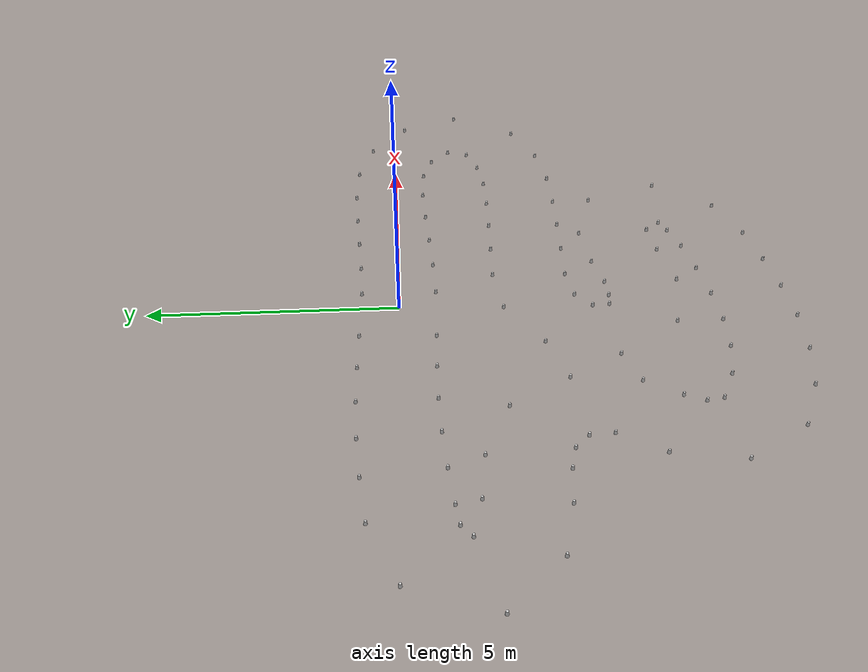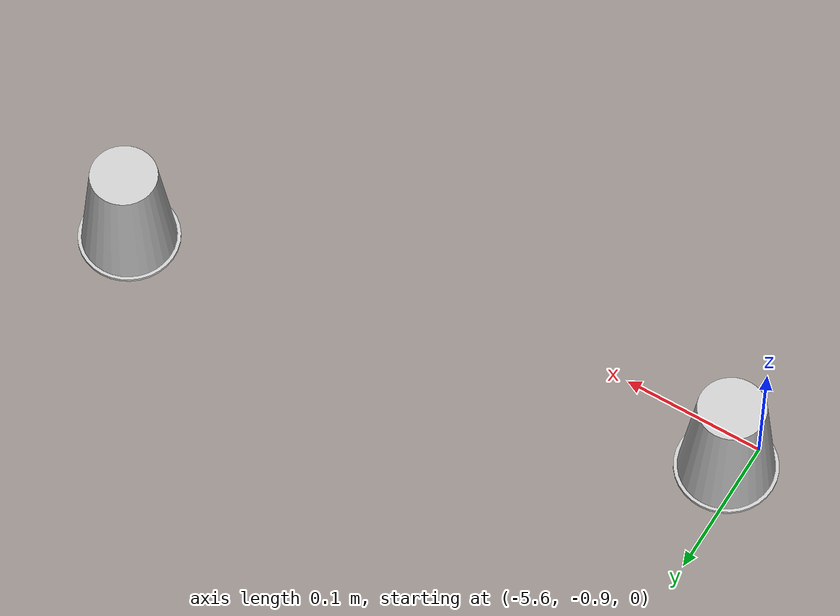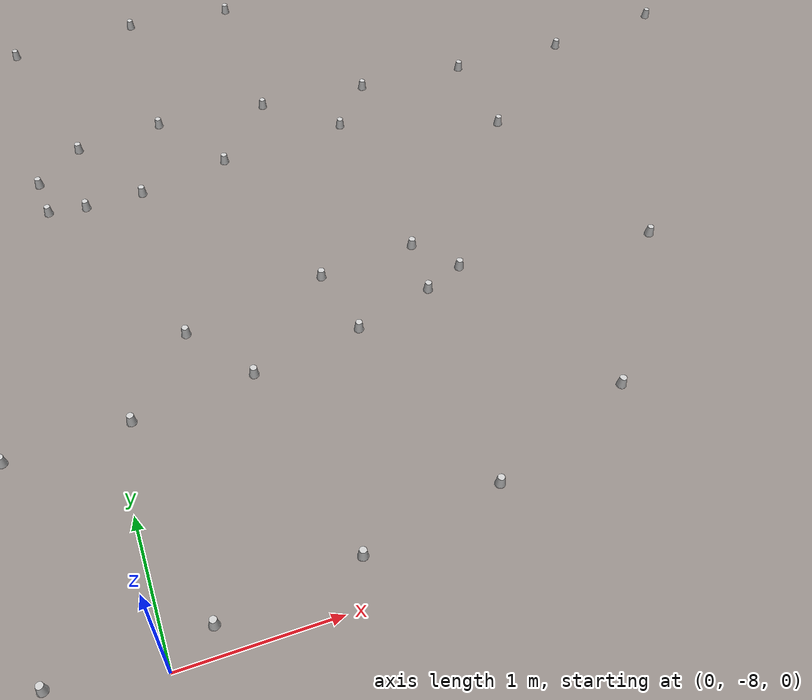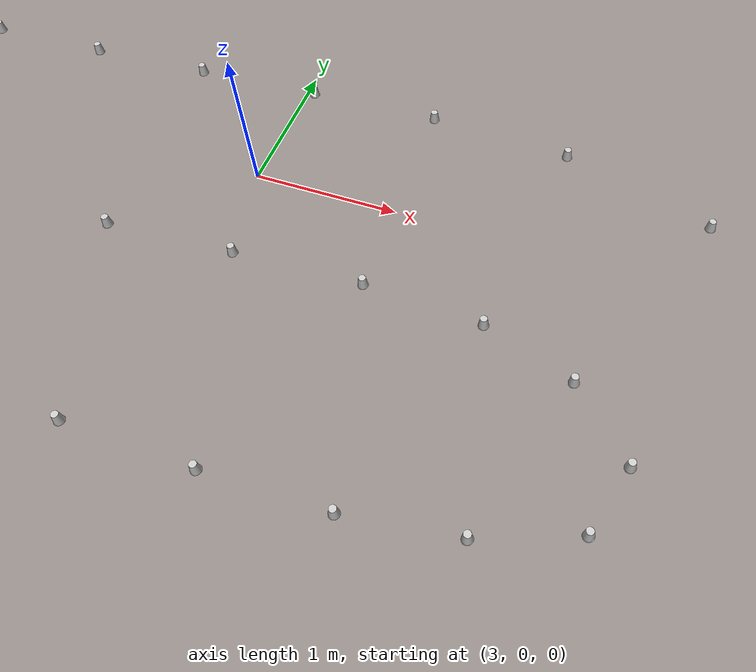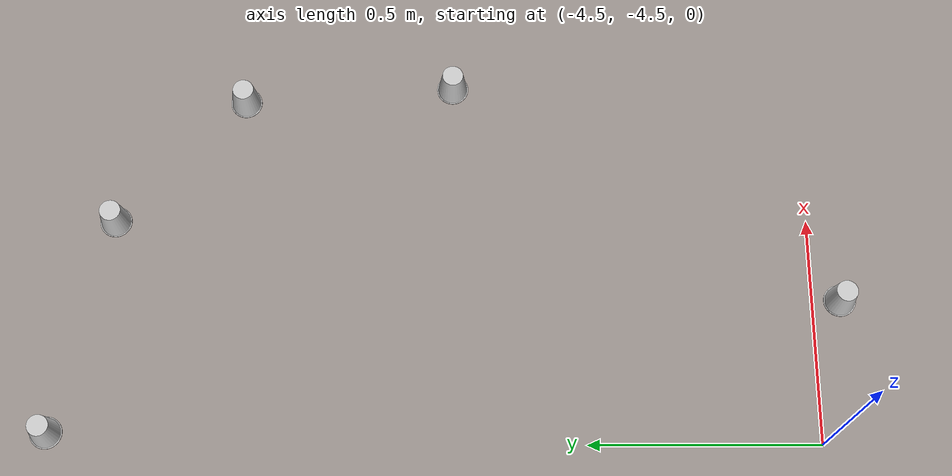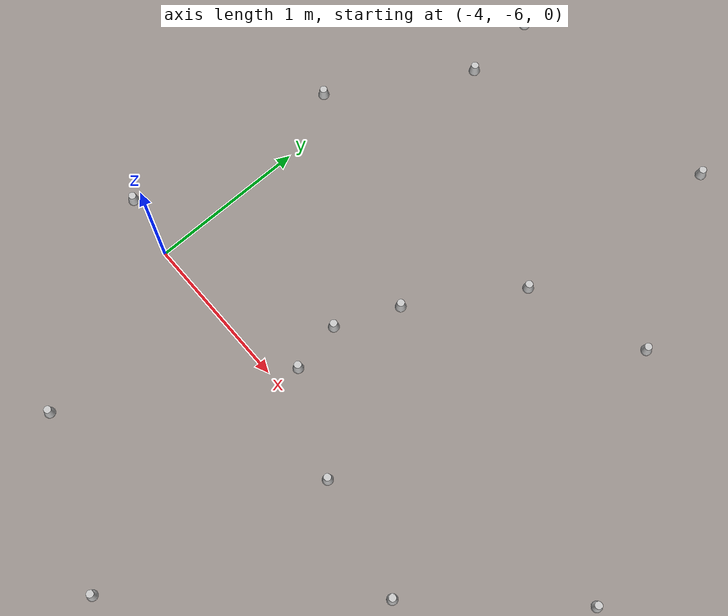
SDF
<?xml version='1.0' encoding='UTF-8'?>
<sdf version="1.4">
  <model name="some track">
    <include>
      <uri>model://cone_yellow</uri>
      <pose>0.44532843419543156 -0.7517655040045353 0 0 0 0</pose>
      <name>cone_right_0</name>
    </include>
    <include>
      <uri>model://cone_yellow</uri>
      <pose>1.3561582244588484 -0.7297098783180443 0 0 0 0</pose>
      <name>cone_right_1</name>
    </include>
    <include>
      <uri>model://cone_yellow</uri>
      <pose>2.246579475809653 -0.6872920485176046 0 0 0 0</pose>
      <name>cone_right_2</name>
    </include>
    <include>
      <uri>model://cone_yellow</uri>
      <pose>3.128735906263988 -0.6414211334563982 0 0 0 0</pose>
      <name>cone_right_3</name>
    </include>
    <include>
      <uri>model://cone_yellow</uri>
      <pose>4.0123195182985105 -0.609832305464894 0 0 0 0</pose>
      <name>cone_right_4</name>
    </include>
    <include>
      <uri>model://cone_yellow</uri>
      <pose>4.813619329737304 -0.6567870702049523 0 0 0 0</pose>
      <name>cone_right_5</name>
    </include>
    <include>
      <uri>model://cone_yellow</uri>
      <pose>5.426015287033728 -0.8655939495500213 0 0 0 0</pose>
      <name>cone_right_6</name>
    </include>
    <include>
      <uri>model://cone_yellow</uri>
      <pose>5.842792072963772 -1.2758926808901134 0 0 0 0</pose>
      <name>cone_right_7</name>
    </include>
    <include>
      <uri>model://cone_yellow</uri>
      <pose>5.7136609890403225 -1.7170841274891648 0 0 0 0</pose>
      <name>cone_right_8</name>
    </include>
    <include>
      <uri>model://cone_yellow</uri>
      <pose>5.11883780640291 -1.9319245447790268 0 0 0 0</pose>
      <name>cone_right_9</name>
    </include>
    <include>
      <uri>model://cone_yellow</uri>
      <pose>4.409484526332486 -2.0263091839179475 0 0 0 0</pose>
      <name>cone_right_10</name>
    </include>
    <include>
      <uri>model://cone_yellow</uri>
      <pose>3.599106443089668 -2.0356730992995984 0 0 0 0</pose>
      <name>cone_right_11</name>
    </include>
    <include>
      <uri>model://cone_yellow</uri>
      <pose>2.7286823929773716 -2.014726249385479 0 0 0 0</pose>
      <name>cone_right_12</name>
    </include>
    <include>
      <uri>model://cone_yellow</uri>
      <pose>1.8542712468050244 -1.9849206260404086 0 0 0 0</pose>
      <name>cone_right_13</name>
    </include>
    <include>
      <uri>model://cone_yellow</uri>
      <pose>0.956648776510222 -1.94876491273577 0 0 0 0</pose>
      <name>cone_right_14</name>
    </include>
    <include>
      <uri>model://cone_yellow</uri>
      <pose>-0.10587205751829051 -2.083718932034849 0 0 0 0</pose>
      <name>cone_right_15</name>
    </include>
    <include>
      <uri>model://cone_yellow</uri>
      <pose>-1.1886513237863356 -2.7917168840555977 0 0 0 0</pose>
      <name>cone_right_16</name>
    </include>
    <include>
      <uri>model://cone_yellow</uri>
      <pose>-1.6173561454818755 -4.184021942090414 0 0 0 0</pose>
      <name>cone_right_17</name>
    </include>
    <include>
      <uri>model://cone_yellow</uri>
      <pose>-0.7091848577082369 -5.459993767990639 0 0 0 0</pose>
      <name>cone_right_18</name>
    </include>
    <include>
      <uri>model://cone_yellow</uri>
      <pose>0.6110234193466256 -5.727231549258955 0 0 0 0</pose>
      <name>cone_right_19</name>
    </include>
    <include>
      <uri>model://cone_yellow</uri>
      <pose>1.660682322036017 -5.525302004261681 0 0 0 0</pose>
      <name>cone_right_20</name>
    </include>
    <include>
      <uri>model://cone_yellow</uri>
      <pose>2.3952461850678444 -5.44641001713668 0 0 0 0</pose>
      <name>cone_right_21</name>
    </include>
    <include>
      <uri>model://cone_yellow</uri>
      <pose>2.6459992599699294 -5.760129282699452 0 0 0 0</pose>
      <name>cone_right_22</name>
    </include>
    <include>
      <uri>model://cone_yellow</uri>
      <pose>2.3476110720665444 -5.890484035315588 0 0 0 0</pose>
      <name>cone_right_23</name>
    </include>
    <include>
      <uri>model://cone_yellow</uri>
      <pose>1.7566256077249063 -6.072243750283921 0 0 0 0</pose>
      <name>cone_right_24</name>
    </include>
    <include>
      <uri>model://cone_yellow</uri>
      <pose>0.9627502990653223 -6.213773697027143 0 0 0 0</pose>
      <name>cone_right_25</name>
    </include>
    <include>
      <uri>model://cone_yellow</uri>
      <pose>0.11498758312116553 -6.324705258762572 0 0 0 0</pose>
      <name>cone_right_26</name>
    </include>
    <include>
      <uri>model://cone_yellow</uri>
      <pose>-0.7084705242905679 -6.367728822083069 0 0 0 0</pose>
      <name>cone_right_27</name>
    </include>
    <include>
      <uri>model://cone_yellow</uri>
      <pose>-1.5039244125294318 -6.317064377628609 0 0 0 0</pose>
      <name>cone_right_28</name>
    </include>
    <include>
      <uri>model://cone_yellow</uri>
      <pose>-2.2724269148706298 -6.149317280003542 0 0 0 0</pose>
      <name>cone_right_29</name>
    </include>
    <include>
      <uri>model://cone_yellow</uri>
      <pose>-2.9043328252512026 -5.845132449156644 0 0 0 0</pose>
      <name>cone_right_30</name>
    </include>
    <include>
      <uri>model://cone_yellow</uri>
      <pose>-2.9615770819914804 -5.5160772697247 0 0 0 0</pose>
      <name>cone_right_31</name>
    </include>
    <include>
      <uri>model://cone_yellow</uri>
      <pose>-2.7930933036949974 -5.124293996490348 0 0 0 0</pose>
      <name>cone_right_32</name>
    </include>
    <include>
      <uri>model://cone_yellow</uri>
      <pose>-2.3731165818446445 -4.455775728295216 0 0 0 0</pose>
      <name>cone_right_33</name>
    </include>
    <include>
      <uri>model://cone_yellow</uri>
      <pose>-2.2163119669445086 -3.12736975964369 0 0 0 0</pose>
      <name>cone_right_34</name>
    </include>
    <include>
      <uri>model://cone_yellow</uri>
      <pose>-2.9125575857943566 -1.9339109418196445 0 0 0 0</pose>
      <name>cone_right_35</name>
    </include>
    <include>
      <uri>model://cone_yellow</uri>
      <pose>-4.084105708328246 -1.400214608907154 0 0 0 0</pose>
      <name>cone_right_36</name>
    </include>
    <include>
      <uri>model://cone_yellow</uri>
      <pose>-5.05943458587873 -1.2717997204014528 0 0 0 0</pose>
      <name>cone_right_37</name>
    </include>
    <include>
      <uri>model://cone_yellow</uri>
      <pose>-5.830790114069076 -1.0747693036700845 0 0 0 0</pose>
      <name>cone_right_38</name>
    </include>
    <include>
      <uri>model://cone_yellow</uri>
      <pose>-5.587576268183326 -0.8780789707184229 0 0 0 0</pose>
      <name>cone_right_39</name>
    </include>
    <include>
      <uri>model://cone_yellow</uri>
      <pose>-5.1559500310598105 -0.8225777215538087 0 0 0 0</pose>
      <name>cone_right_40</name>
    </include>
    <include>
      <uri>model://cone_yellow</uri>
      <pose>-4.344364160064159 -0.7415209061565781 0 0 0 0</pose>
      <name>cone_right_41</name>
    </include>
    <include>
      <uri>model://cone_yellow</uri>
      <pose>-3.495943779974307 -0.6822430243734413 0 0 0 0</pose>
      <name>cone_right_42</name>
    </include>
    <include>
      <uri>model://cone_yellow</uri>
      <pose>-2.6498558843856372 -0.6632593437587679 0 0 0 0</pose>
      <name>cone_right_43</name>
    </include>
    <include>
      <uri>model://cone_yellow</uri>
      <pose>-1.78703787313614 -0.6761296323755089 0 0 0 0</pose>
      <name>cone_right_44</name>
    </include>
    <include>
      <uri>model://cone_yellow</uri>
      <pose>-0.9131064442336116 -0.7089112622099785 0 0 0 0</pose>
      <name>cone_right_45</name>
    </include>
    <include>
      <uri>model://cone_blue</uri>
      <pose>0.4512554148714035 0.7482227862497809 0 0 0 0</pose>
      <name>cone_left_0</name>
    </include>
    <include>
      <uri>model://cone_blue</uri>
      <pose>1.3072328407635296 0.7694920116321605 0 0 0 0</pose>
      <name>cone_left_1</name>
    </include>
    <include>
      <uri>model://cone_blue</uri>
      <pose>2.169894851180333 0.8107464918228835 0 0 0 0</pose>
      <name>cone_left_2</name>
    </include>
    <include>
      <uri>model://cone_blue</uri>
      <pose>3.0528057540051536 0.8566558378564748 0 0 0 0</pose>
      <name>cone_left_3</name>
    </include>
    <include>
      <uri>model://cone_blue</uri>
      <pose>3.9698599552422396 0.8895666359463206 0 0 0 0</pose>
      <name>cone_left_4</name>
    </include>
    <include>
      <uri>model://cone_blue</uri>
      <pose>4.95946874013189 0.8361054073323793 0 0 0 0</pose>
      <name>cone_left_5</name>
    </include>
    <include>
      <uri>model://cone_blue</uri>
      <pose>6.000344180376546 0.5200994950009785 0 0 0 0</pose>
      <name>cone_left_6</name>
    </include>
    <include>
      <uri>model://cone_blue</uri>
      <pose>6.948370279177397 -0.2621388498515016 0 0 0 0</pose>
      <name>cone_left_7</name>
    </include>
    <include>
      <uri>model://cone_blue</uri>
      <pose>7.445692805961952 -1.5113017361269303 0 0 0 0</pose>
      <name>cone_left_8</name>
    </include>
    <include>
      <uri>model://cone_blue</uri>
      <pose>6.650927654983725 -2.888208030802277 0 0 0 0</pose>
      <name>cone_left_9</name>
    </include>
    <include>
      <uri>model://cone_blue</uri>
      <pose>5.584196064059405 -3.3579125152861105 0 0 0 0</pose>
      <name>cone_left_10</name>
    </include>
    <include>
      <uri>model://cone_blue</uri>
      <pose>4.5595389332290495 -3.518784870477337 0 0 0 0</pose>
      <name>cone_left_11</name>
    </include>
    <include>
      <uri>model://cone_blue</uri>
      <pose>3.5910430079363387 -3.5356514261475325 0 0 0 0</pose>
      <name>cone_left_12</name>
    </include>
    <include>
      <uri>model://cone_blue</uri>
      <pose>2.6900116242555248 -3.51422769041395 0 0 0 0</pose>
      <name>cone_left_13</name>
    </include>
    <include>
      <uri>model://cone_blue</uri>
      <pose>1.798073323677688 -3.4838675208422805 0 0 0 0</pose>
      <name>cone_left_14</name>
    </include>
    <include>
      <uri>model://cone_blue</uri>
      <pose>0.9050284442899096 -3.4478764300357554 0 0 0 0</pose>
      <name>cone_left_15</name>
    </include>
    <include>
      <uri>model://cone_blue</uri>
      <pose>0.2191239641897265 -3.548088279526786 0 0 0 0</pose>
      <name>cone_left_16</name>
    </include>
    <include>
      <uri>model://cone_blue</uri>
      <pose>-0.14290163674403267 -3.867080818754417 0 0 0 0</pose>
      <name>cone_left_17</name>
    </include>
    <include>
      <uri>model://cone_blue</uri>
      <pose>-0.11755458210054737 -4.208420107573167 0 0 0 0</pose>
      <name>cone_left_18</name>
    </include>
    <include>
      <uri>model://cone_blue</uri>
      <pose>0.1668885775010706 -4.242416117029286 0 0 0 0</pose>
      <name>cone_left_19</name>
    </include>
    <include>
      <uri>model://cone_blue</uri>
      <pose>0.6079794654366751 -4.227234637813937 0 0 0 0</pose>
      <name>cone_left_20</name>
    </include>
    <include>
      <uri>model://cone_blue</uri>
      <pose>1.3118160078562724 -4.066435219791405 0 0 0 0</pose>
      <name>cone_left_21</name>
    </include>
    <include>
      <uri>model://cone_blue</uri>
      <pose>2.338881427812051 -3.9474693865113384 0 0 0 0</pose>
      <name>cone_left_22</name>
    </include>
    <include>
      <uri>model://cone_blue</uri>
      <pose>3.6038868735315477 -4.3494517779781665 0 0 0 0</pose>
      <name>cone_left_23</name>
    </include>
    <include>
      <uri>model://cone_blue</uri>
      <pose>4.138173500082578 -5.913152278174767 0 0 0 0</pose>
      <name>cone_left_24</name>
    </include>
    <include>
      <uri>model://cone_blue</uri>
      <pose>3.2445296584582133 -7.092788925676253 0 0 0 0</pose>
      <name>cone_left_25</name>
    </include>
    <include>
      <uri>model://cone_blue</uri>
      <pose>2.1680397860604823 -7.514720222835367 0 0 0 0</pose>
      <name>cone_left_26</name>
    </include>
    <include>
      <uri>model://cone_blue</uri>
      <pose>1.2098846105477998 -7.6932751779618815 0 0 0 0</pose>
      <name>cone_left_27</name>
    </include>
    <include>
      <uri>model://cone_blue</uri>
      <pose>0.28848932089953094 -7.814637185726985 0 0 0 0</pose>
      <name>cone_left_28</name>
    </include>
    <include>
      <uri>model://cone_blue</uri>
      <pose>-0.6637278065593396 -7.867061369988977 0 0 0 0</pose>
      <name>cone_left_29</name>
    </include>
    <include>
      <uri>model://cone_blue</uri>
      <pose>-1.6436932555122408 -7.810538405032918 0 0 0 0</pose>
      <name>cone_left_30</name>
    </include>
    <include>
      <uri>model://cone_blue</uri>
      <pose>-2.6435810657269587 -7.602673601179502 0 0 0 0</pose>
      <name>cone_left_31</name>
    </include>
    <include>
      <uri>model://cone_blue</uri>
      <pose>-3.6603694083812073 -7.140666580304529 0 0 0 0</pose>
      <name>cone_left_32</name>
    </include>
    <include>
      <uri>model://cone_blue</uri>
      <pose>-4.404304157952624 -5.92661178019685 0 0 0 0</pose>
      <name>cone_left_33</name>
    </include>
    <include>
      <uri>model://cone_blue</uri>
      <pose>-4.183125161034009 -4.5605463263553325 0 0 0 0</pose>
      <name>cone_left_34</name>
    </include>
    <include>
      <uri>model://cone_blue</uri>
      <pose>-3.6796158916710735 -3.7188499834449873 0 0 0 0</pose>
      <name>cone_left_35</name>
    </include>
    <include>
      <uri>model://cone_blue</uri>
      <pose>-3.7111788003140633 -3.2513582691583975 0 0 0 0</pose>
      <name>cone_left_36</name>
    </include>
    <include>
      <uri>model://cone_blue</uri>
      <pose>-3.9953065958260012 -2.9720123729310233 0 0 0 0</pose>
      <name>cone_left_37</name>
    </include>
    <include>
      <uri>model://cone_blue</uri>
      <pose>-4.469170292794733 -2.8499474345649203 0 0 0 0</pose>
      <name>cone_left_38</name>
    </include>
    <include>
      <uri>model://cone_blue</uri>
      <pose>-5.229011567147749 -2.762183445293699 0 0 0 0</pose>
      <name>cone_left_39</name>
    </include>
    <include>
      <uri>model://cone_blue</uri>
      <pose>-6.280484010460061 -2.5057743349500923 0 0 0 0</pose>
      <name>cone_left_40</name>
    </include>
    <include>
      <uri>model://cone_blue</uri>
      <pose>-7.29318108813088 -1.4660533374612674 0 0 0 0</pose>
      <name>cone_left_41</name>
    </include>
    <include>
      <uri>model://cone_blue</uri>
      <pose>-6.715757277650101 0.1104591468463616 0 0 0 0</pose>
      <name>cone_left_42</name>
    </include>
    <include>
      <uri>model://cone_blue</uri>
      <pose>-5.470625766806591 0.6440439683622453 0 0 0 0</pose>
      <name>cone_left_43</name>
    </include>
    <include>
      <uri>model://cone_blue</uri>
      <pose>-4.489068174082301 0.7514830283081096 0 0 0 0</pose>
      <name>cone_left_44</name>
    </include>
    <include>
      <uri>model://cone_blue</uri>
      <pose>-3.584872485199387 0.8151185503262005 0 0 0 0</pose>
      <name>cone_left_45</name>
    </include>
    <include>
      <uri>model://cone_blue</uri>
      <pose>-2.6673463777698503 0.8366386803219281 0 0 0 0</pose>
      <name>cone_left_46</name>
    </include>
    <include>
      <uri>model://cone_blue</uri>
      <pose>-1.7538237117900546 0.8235025957011207 0 0 0 0</pose>
      <name>cone_left_47</name>
    </include>
    <include>
      <uri>model://cone_blue</uri>
      <pose>-0.851187685729863 0.7898102153652762 0 0 0 0</pose>
      <name>cone_left_48</name>
    </include>
  </model>
</sdf>

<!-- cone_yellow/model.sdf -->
<sdf version='1.4'>
  <model name="cone_yellow">
    <link name="link">
    <collision name="collision"><geometry><box><size> 0.05 0.05 0.01</size>
             </box></geometry></collision>
      <visual name="visual">
        <geometry>
          <mesh>
            <uri>model://cup.dae</uri>
            <scale>1 1 1</scale>
          </mesh>
        </geometry>
        <material>
            <script>
              <uri>model://cone_yellow/materials/scripts</uri>
              <uri>model://cone_yellow/materials/textures</uri>
              <name>cone_yellow/Image</name>
            </script>
        </material>
      </visual>
    </link>
  </model>
</sdf>

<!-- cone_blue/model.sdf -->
<sdf version='1.4'>
  <model name="cone_blue">
    <link name="link">
    <collision name="collision"><geometry><box><size> 0.05 0.05 0.01</size>
             </box></geometry></collision>
      <visual name="visual">
        <geometry>
          <mesh>
            <uri>model://cup.dae</uri>
            <scale>1 1 1</scale>
          </mesh>
        </geometry>
        <material>
            <script>
              <uri>model://cone_blue/materials/scripts</uri>
              <uri>model://cone_blue/materials/textures</uri>
              <name>cone_blue/Image</name>
            </script>
        </material>
      </visual>
    </link>
  </model>
</sdf>
